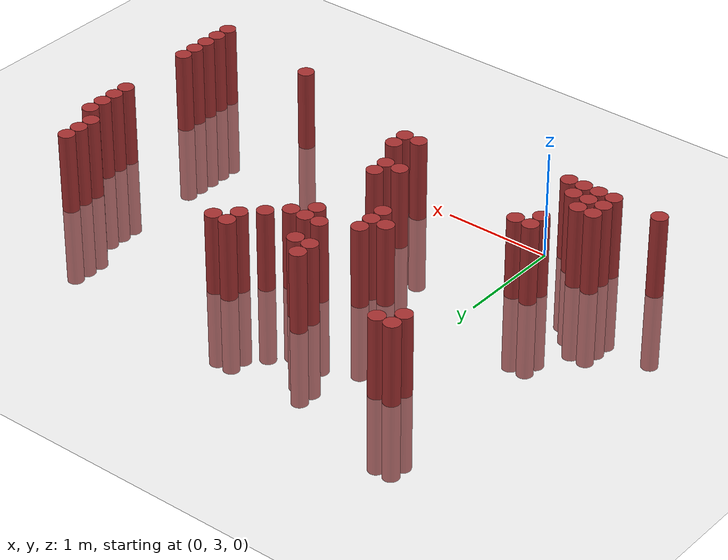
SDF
<sdf version="1.6">
 <world name="default">
  <model name="ground_plane">
   <static>1</static>
   <link name="link">
    <collision name="collision">
     <geometry><plane><normal>0 0 1</normal><size>100 100</size></plane></geometry>
     <surface><friction><ode><mu>100</mu><mu2>50</mu2></ode></friction></surface>
    </collision>
    <visual name="visual">
     <cast_shadows>0</cast_shadows>
     <geometry><plane><normal>0 0 1</normal><size>100 100</size></plane></geometry>
     <material>
      <script><uri>file://media/materials/scripts/gazebo.material</uri><name>Gazebo/Grey</name></script>
     </material>
    </visual>
   </link>
  </model>
  <model name="unit_cylinder_326">
   <static>1</static>
   <pose>-1.025000 2.875000 0.000000 0.000000 0.000000 0.000000</pose>
   <link name="link">
    <inertial>
     <mass>1</mass>
     <inertia><ixx>0.145833</ixx><ixy>0</ixy><ixz>0</ixz><iyy>0.145833</iyy><iyz>0</iyz><izz>0.125</izz></inertia>
    </inertial>
    <collision name="collision">
     <geometry><cylinder><radius>0.075000</radius><length>1.5</length></cylinder></geometry>
    </collision>
    <visual name="visual">
     <geometry><cylinder><radius>0.075000</radius><length>1.5</length></cylinder></geometry>
     <material>
      <ambient>0.648000 0.192000 0.192000 1</ambient>
      <diffuse>0.648000 0.192000 0.192000 1</diffuse>
     </material>
     <material>
      <script><name>Gazebo/Grey</name><uri>file://media/materials/scripts/gazebo.material</uri></script>
     </material>
    </visual>
   </link>
  </model>
  <model name="unit_cylinder_328">
   <static>1</static>
   <pose>-0.575000 2.875000 0.000000 0.000000 0.000000 0.000000</pose>
   <link name="link">
    <inertial>
     <mass>1</mass>
     <inertia><ixx>0.145833</ixx><ixy>0</ixy><ixz>0</ixz><iyy>0.145833</iyy><iyz>0</iyz><izz>0.125</izz></inertia>
    </inertial>
    <collision name="collision">
     <geometry><cylinder><radius>0.075000</radius><length>1.5</length></cylinder></geometry>
    </collision>
    <visual name="visual">
     <geometry><cylinder><radius>0.075000</radius><length>1.5</length></cylinder></geometry>
     <material>
      <ambient>0.648000 0.192000 0.192000 1</ambient>
      <diffuse>0.648000 0.192000 0.192000 1</diffuse>
     </material>
     <material>
      <script><name>Gazebo/Grey</name><uri>file://media/materials/scripts/gazebo.material</uri></script>
     </material>
    </visual>
   </link>
  </model>
  <model name="unit_cylinder_329">
   <static>1</static>
   <pose>-0.575000 3.025000 0.000000 0.000000 0.000000 0.000000</pose>
   <link name="link">
    <inertial>
     <mass>1</mass>
     <inertia><ixx>0.145833</ixx><ixy>0</ixy><ixz>0</ixz><iyy>0.145833</iyy><iyz>0</iyz><izz>0.125</izz></inertia>
    </inertial>
    <collision name="collision">
     <geometry><cylinder><radius>0.075000</radius><length>1.5</length></cylinder></geometry>
    </collision>
    <visual name="visual">
     <geometry><cylinder><radius>0.075000</radius><length>1.5</length></cylinder></geometry>
     <material>
      <ambient>0.648000 0.192000 0.192000 1</ambient>
      <diffuse>0.648000 0.192000 0.192000 1</diffuse>
     </material>
     <material>
      <script><name>Gazebo/Grey</name><uri>file://media/materials/scripts/gazebo.material</uri></script>
     </material>
    </visual>
   </link>
  </model>
  <model name="unit_cylinder_330">
   <static>1</static>
   <pose>-0.575000 3.175000 0.000000 0.000000 0.000000 0.000000</pose>
   <link name="link">
    <inertial>
     <mass>1</mass>
     <inertia><ixx>0.145833</ixx><ixy>0</ixy><ixz>0</ixz><iyy>0.145833</iyy><iyz>0</iyz><izz>0.125</izz></inertia>
    </inertial>
    <collision name="collision">
     <geometry><cylinder><radius>0.075000</radius><length>1.5</length></cylinder></geometry>
    </collision>
    <visual name="visual">
     <geometry><cylinder><radius>0.075000</radius><length>1.5</length></cylinder></geometry>
     <material>
      <ambient>0.648000 0.192000 0.192000 1</ambient>
      <diffuse>0.648000 0.192000 0.192000 1</diffuse>
     </material>
     <material>
      <script><name>Gazebo/Grey</name><uri>file://media/materials/scripts/gazebo.material</uri></script>
     </material>
    </visual>
   </link>
  </model>
  <model name="unit_cylinder_331">
   <static>1</static>
   <pose>-0.425000 2.875000 0.000000 0.000000 0.000000 0.000000</pose>
   <link name="link">
    <inertial>
     <mass>1</mass>
     <inertia><ixx>0.145833</ixx><ixy>0</ixy><ixz>0</ixz><iyy>0.145833</iyy><iyz>0</iyz><izz>0.125</izz></inertia>
    </inertial>
    <collision name="collision">
     <geometry><cylinder><radius>0.075000</radius><length>1.5</length></cylinder></geometry>
    </collision>
    <visual name="visual">
     <geometry><cylinder><radius>0.075000</radius><length>1.5</length></cylinder></geometry>
     <material>
      <ambient>0.648000 0.192000 0.192000 1</ambient>
      <diffuse>0.648000 0.192000 0.192000 1</diffuse>
     </material>
     <material>
      <script><name>Gazebo/Grey</name><uri>file://media/materials/scripts/gazebo.material</uri></script>
     </material>
    </visual>
   </link>
  </model>
  <model name="unit_cylinder_332">
   <static>1</static>
   <pose>-0.425000 3.025000 0.000000 0.000000 0.000000 0.000000</pose>
   <link name="link">
    <inertial>
     <mass>1</mass>
     <inertia><ixx>0.145833</ixx><ixy>0</ixy><ixz>0</ixz><iyy>0.145833</iyy><iyz>0</iyz><izz>0.125</izz></inertia>
    </inertial>
    <collision name="collision">
     <geometry><cylinder><radius>0.075000</radius><length>1.5</length></cylinder></geometry>
    </collision>
    <visual name="visual">
     <geometry><cylinder><radius>0.075000</radius><length>1.5</length></cylinder></geometry>
     <material>
      <ambient>0.648000 0.192000 0.192000 1</ambient>
      <diffuse>0.648000 0.192000 0.192000 1</diffuse>
     </material>
     <material>
      <script><name>Gazebo/Grey</name><uri>file://media/materials/scripts/gazebo.material</uri></script>
     </material>
    </visual>
   </link>
  </model>
  <model name="unit_cylinder_333">
   <static>1</static>
   <pose>-0.425000 3.175000 0.000000 0.000000 0.000000 0.000000</pose>
   <link name="link">
    <inertial>
     <mass>1</mass>
     <inertia><ixx>0.145833</ixx><ixy>0</ixy><ixz>0</ixz><iyy>0.145833</iyy><iyz>0</iyz><izz>0.125</izz></inertia>
    </inertial>
    <collision name="collision">
     <geometry><cylinder><radius>0.075000</radius><length>1.5</length></cylinder></geometry>
    </collision>
    <visual name="visual">
     <geometry><cylinder><radius>0.075000</radius><length>1.5</length></cylinder></geometry>
     <material>
      <ambient>0.648000 0.192000 0.192000 1</ambient>
      <diffuse>0.648000 0.192000 0.192000 1</diffuse>
     </material>
     <material>
      <script><name>Gazebo/Grey</name><uri>file://media/materials/scripts/gazebo.material</uri></script>
     </material>
    </visual>
   </link>
  </model>
  <model name="unit_cylinder_335">
   <static>1</static>
   <pose>-0.275000 2.875000 0.000000 0.000000 0.000000 0.000000</pose>
   <link name="link">
    <inertial>
     <mass>1</mass>
     <inertia><ixx>0.145833</ixx><ixy>0</ixy><ixz>0</ixz><iyy>0.145833</iyy><iyz>0</iyz><izz>0.125</izz></inertia>
    </inertial>
    <collision name="collision">
     <geometry><cylinder><radius>0.075000</radius><length>1.5</length></cylinder></geometry>
    </collision>
    <visual name="visual">
     <geometry><cylinder><radius>0.075000</radius><length>1.5</length></cylinder></geometry>
     <material>
      <ambient>0.648000 0.192000 0.192000 1</ambient>
      <diffuse>0.648000 0.192000 0.192000 1</diffuse>
     </material>
     <material>
      <script><name>Gazebo/Grey</name><uri>file://media/materials/scripts/gazebo.material</uri></script>
     </material>
    </visual>
   </link>
  </model>
  <model name="unit_cylinder_336">
   <static>1</static>
   <pose>-0.275000 3.025000 0.000000 0.000000 0.000000 0.000000</pose>
   <link name="link">
    <inertial>
     <mass>1</mass>
     <inertia><ixx>0.145833</ixx><ixy>0</ixy><ixz>0</ixz><iyy>0.145833</iyy><iyz>0</iyz><izz>0.125</izz></inertia>
    </inertial>
    <collision name="collision">
     <geometry><cylinder><radius>0.075000</radius><length>1.5</length></cylinder></geometry>
    </collision>
    <visual name="visual">
     <geometry><cylinder><radius>0.075000</radius><length>1.5</length></cylinder></geometry>
     <material>
      <ambient>0.648000 0.192000 0.192000 1</ambient>
      <diffuse>0.648000 0.192000 0.192000 1</diffuse>
     </material>
     <material>
      <script><name>Gazebo/Grey</name><uri>file://media/materials/scripts/gazebo.material</uri></script>
     </material>
    </visual>
   </link>
  </model>
  <model name="unit_cylinder_337">
   <static>1</static>
   <pose>-0.275000 3.475000 0.000000 0.000000 0.000000 0.000000</pose>
   <link name="link">
    <inertial>
     <mass>1</mass>
     <inertia><ixx>0.145833</ixx><ixy>0</ixy><ixz>0</ixz><iyy>0.145833</iyy><iyz>0</iyz><izz>0.125</izz></inertia>
    </inertial>
    <collision name="collision">
     <geometry><cylinder><radius>0.075000</radius><length>1.5</length></cylinder></geometry>
    </collision>
    <visual name="visual">
     <geometry><cylinder><radius>0.075000</radius><length>1.5</length></cylinder></geometry>
     <material>
      <ambient>0.648000 0.192000 0.192000 1</ambient>
      <diffuse>0.648000 0.192000 0.192000 1</diffuse>
     </material>
     <material>
      <script><name>Gazebo/Grey</name><uri>file://media/materials/scripts/gazebo.material</uri></script>
     </material>
    </visual>
   </link>
  </model>
  <model name="unit_cylinder_338">
   <static>1</static>
   <pose>-0.275000 3.625000 0.000000 0.000000 0.000000 0.000000</pose>
   <link name="link">
    <inertial>
     <mass>1</mass>
     <inertia><ixx>0.145833</ixx><ixy>0</ixy><ixz>0</ixz><iyy>0.145833</iyy><iyz>0</iyz><izz>0.125</izz></inertia>
    </inertial>
    <collision name="collision">
     <geometry><cylinder><radius>0.075000</radius><length>1.5</length></cylinder></geometry>
    </collision>
    <visual name="visual">
     <geometry><cylinder><radius>0.075000</radius><length>1.5</length></cylinder></geometry>
     <material>
      <ambient>0.648000 0.192000 0.192000 1</ambient>
      <diffuse>0.648000 0.192000 0.192000 1</diffuse>
     </material>
     <material>
      <script><name>Gazebo/Grey</name><uri>file://media/materials/scripts/gazebo.material</uri></script>
     </material>
    </visual>
   </link>
  </model>
  <model name="unit_cylinder_339">
   <static>1</static>
   <pose>-0.275000 5.275000 0.000000 0.000000 0.000000 0.000000</pose>
   <link name="link">
    <inertial>
     <mass>1</mass>
     <inertia><ixx>0.145833</ixx><ixy>0</ixy><ixz>0</ixz><iyy>0.145833</iyy><iyz>0</iyz><izz>0.125</izz></inertia>
    </inertial>
    <collision name="collision">
     <geometry><cylinder><radius>0.075000</radius><length>1.5</length></cylinder></geometry>
    </collision>
    <visual name="visual">
     <geometry><cylinder><radius>0.075000</radius><length>1.5</length></cylinder></geometry>
     <material>
      <ambient>0.648000 0.192000 0.192000 1</ambient>
      <diffuse>0.648000 0.192000 0.192000 1</diffuse>
     </material>
     <material>
      <script><name>Gazebo/Grey</name><uri>file://media/materials/scripts/gazebo.material</uri></script>
     </material>
    </visual>
   </link>
  </model>
  <model name="unit_cylinder_340">
   <static>1</static>
   <pose>-0.275000 5.425000 0.000000 0.000000 0.000000 0.000000</pose>
   <link name="link">
    <inertial>
     <mass>1</mass>
     <inertia><ixx>0.145833</ixx><ixy>0</ixy><ixz>0</ixz><iyy>0.145833</iyy><iyz>0</iyz><izz>0.125</izz></inertia>
    </inertial>
    <collision name="collision">
     <geometry><cylinder><radius>0.075000</radius><length>1.5</length></cylinder></geometry>
    </collision>
    <visual name="visual">
     <geometry><cylinder><radius>0.075000</radius><length>1.5</length></cylinder></geometry>
     <material>
      <ambient>0.648000 0.192000 0.192000 1</ambient>
      <diffuse>0.648000 0.192000 0.192000 1</diffuse>
     </material>
     <material>
      <script><name>Gazebo/Grey</name><uri>file://media/materials/scripts/gazebo.material</uri></script>
     </material>
    </visual>
   </link>
  </model>
  <model name="unit_cylinder_345">
   <static>1</static>
   <pose>-0.125000 2.875000 0.000000 0.000000 0.000000 0.000000</pose>
   <link name="link">
    <inertial>
     <mass>1</mass>
     <inertia><ixx>0.145833</ixx><ixy>0</ixy><ixz>0</ixz><iyy>0.145833</iyy><iyz>0</iyz><izz>0.125</izz></inertia>
    </inertial>
    <collision name="collision">
     <geometry><cylinder><radius>0.075000</radius><length>1.5</length></cylinder></geometry>
    </collision>
    <visual name="visual">
     <geometry><cylinder><radius>0.075000</radius><length>1.5</length></cylinder></geometry>
     <material>
      <ambient>0.648000 0.192000 0.192000 1</ambient>
      <diffuse>0.648000 0.192000 0.192000 1</diffuse>
     </material>
     <material>
      <script><name>Gazebo/Grey</name><uri>file://media/materials/scripts/gazebo.material</uri></script>
     </material>
    </visual>
   </link>
  </model>
  <model name="unit_cylinder_346">
   <static>1</static>
   <pose>-0.125000 3.625000 0.000000 0.000000 0.000000 0.000000</pose>
   <link name="link">
    <inertial>
     <mass>1</mass>
     <inertia><ixx>0.145833</ixx><ixy>0</ixy><ixz>0</ixz><iyy>0.145833</iyy><iyz>0</iyz><izz>0.125</izz></inertia>
    </inertial>
    <collision name="collision">
     <geometry><cylinder><radius>0.075000</radius><length>1.5</length></cylinder></geometry>
    </collision>
    <visual name="visual">
     <geometry><cylinder><radius>0.075000</radius><length>1.5</length></cylinder></geometry>
     <material>
      <ambient>0.648000 0.192000 0.192000 1</ambient>
      <diffuse>0.648000 0.192000 0.192000 1</diffuse>
     </material>
     <material>
      <script><name>Gazebo/Grey</name><uri>file://media/materials/scripts/gazebo.material</uri></script>
     </material>
    </visual>
   </link>
  </model>
  <model name="unit_cylinder_347">
   <static>1</static>
   <pose>-0.125000 5.425000 0.000000 0.000000 0.000000 0.000000</pose>
   <link name="link">
    <inertial>
     <mass>1</mass>
     <inertia><ixx>0.145833</ixx><ixy>0</ixy><ixz>0</ixz><iyy>0.145833</iyy><iyz>0</iyz><izz>0.125</izz></inertia>
    </inertial>
    <collision name="collision">
     <geometry><cylinder><radius>0.075000</radius><length>1.5</length></cylinder></geometry>
    </collision>
    <visual name="visual">
     <geometry><cylinder><radius>0.075000</radius><length>1.5</length></cylinder></geometry>
     <material>
      <ambient>0.648000 0.192000 0.192000 1</ambient>
      <diffuse>0.648000 0.192000 0.192000 1</diffuse>
     </material>
     <material>
      <script><name>Gazebo/Grey</name><uri>file://media/materials/scripts/gazebo.material</uri></script>
     </material>
    </visual>
   </link>
  </model>
  <model name="unit_cylinder_361">
   <static>1</static>
   <pose>0.625000 4.375000 0.000000 0.000000 0.000000 0.000000</pose>
   <link name="link">
    <inertial>
     <mass>1</mass>
     <inertia><ixx>0.145833</ixx><ixy>0</ixy><ixz>0</ixz><iyy>0.145833</iyy><iyz>0</iyz><izz>0.125</izz></inertia>
    </inertial>
    <collision name="collision">
     <geometry><cylinder><radius>0.075000</radius><length>1.5</length></cylinder></geometry>
    </collision>
    <visual name="visual">
     <geometry><cylinder><radius>0.075000</radius><length>1.5</length></cylinder></geometry>
     <material>
      <ambient>0.648000 0.192000 0.192000 1</ambient>
      <diffuse>0.648000 0.192000 0.192000 1</diffuse>
     </material>
     <material>
      <script><name>Gazebo/Grey</name><uri>file://media/materials/scripts/gazebo.material</uri></script>
     </material>
    </visual>
   </link>
  </model>
  <model name="unit_cylinder_362">
   <static>1</static>
   <pose>0.775000 4.225000 0.000000 0.000000 0.000000 0.000000</pose>
   <link name="link">
    <inertial>
     <mass>1</mass>
     <inertia><ixx>0.145833</ixx><ixy>0</ixy><ixz>0</ixz><iyy>0.145833</iyy><iyz>0</iyz><izz>0.125</izz></inertia>
    </inertial>
    <collision name="collision">
     <geometry><cylinder><radius>0.075000</radius><length>1.5</length></cylinder></geometry>
    </collision>
    <visual name="visual">
     <geometry><cylinder><radius>0.075000</radius><length>1.5</length></cylinder></geometry>
     <material>
      <ambient>0.648000 0.192000 0.192000 1</ambient>
      <diffuse>0.648000 0.192000 0.192000 1</diffuse>
     </material>
     <material>
      <script><name>Gazebo/Grey</name><uri>file://media/materials/scripts/gazebo.material</uri></script>
     </material>
    </visual>
   </link>
  </model>
  <model name="unit_cylinder_363">
   <static>1</static>
   <pose>0.775000 4.375000 0.000000 0.000000 0.000000 0.000000</pose>
   <link name="link">
    <inertial>
     <mass>1</mass>
     <inertia><ixx>0.145833</ixx><ixy>0</ixy><ixz>0</ixz><iyy>0.145833</iyy><iyz>0</iyz><izz>0.125</izz></inertia>
    </inertial>
    <collision name="collision">
     <geometry><cylinder><radius>0.075000</radius><length>1.5</length></cylinder></geometry>
    </collision>
    <visual name="visual">
     <geometry><cylinder><radius>0.075000</radius><length>1.5</length></cylinder></geometry>
     <material>
      <ambient>0.648000 0.192000 0.192000 1</ambient>
      <diffuse>0.648000 0.192000 0.192000 1</diffuse>
     </material>
     <material>
      <script><name>Gazebo/Grey</name><uri>file://media/materials/scripts/gazebo.material</uri></script>
     </material>
    </visual>
   </link>
  </model>
  <model name="unit_cylinder_364">
   <static>1</static>
   <pose>0.775000 4.525000 0.000000 0.000000 0.000000 0.000000</pose>
   <link name="link">
    <inertial>
     <mass>1</mass>
     <inertia><ixx>0.145833</ixx><ixy>0</ixy><ixz>0</ixz><iyy>0.145833</iyy><iyz>0</iyz><izz>0.125</izz></inertia>
    </inertial>
    <collision name="collision">
     <geometry><cylinder><radius>0.075000</radius><length>1.5</length></cylinder></geometry>
    </collision>
    <visual name="visual">
     <geometry><cylinder><radius>0.075000</radius><length>1.5</length></cylinder></geometry>
     <material>
      <ambient>0.648000 0.192000 0.192000 1</ambient>
      <diffuse>0.648000 0.192000 0.192000 1</diffuse>
     </material>
     <material>
      <script><name>Gazebo/Grey</name><uri>file://media/materials/scripts/gazebo.material</uri></script>
     </material>
    </visual>
   </link>
  </model>
  <model name="unit_cylinder_365">
   <static>1</static>
   <pose>0.925000 4.975000 0.000000 0.000000 0.000000 0.000000</pose>
   <link name="link">
    <inertial>
     <mass>1</mass>
     <inertia><ixx>0.145833</ixx><ixy>0</ixy><ixz>0</ixz><iyy>0.145833</iyy><iyz>0</iyz><izz>0.125</izz></inertia>
    </inertial>
    <collision name="collision">
     <geometry><cylinder><radius>0.075000</radius><length>1.5</length></cylinder></geometry>
    </collision>
    <visual name="visual">
     <geometry><cylinder><radius>0.075000</radius><length>1.5</length></cylinder></geometry>
     <material>
      <ambient>0.648000 0.192000 0.192000 1</ambient>
      <diffuse>0.648000 0.192000 0.192000 1</diffuse>
     </material>
     <material>
      <script><name>Gazebo/Grey</name><uri>file://media/materials/scripts/gazebo.material</uri></script>
     </material>
    </visual>
   </link>
  </model>
  <model name="unit_cylinder_366">
   <static>1</static>
   <pose>0.925000 5.125000 0.000000 0.000000 0.000000 0.000000</pose>
   <link name="link">
    <inertial>
     <mass>1</mass>
     <inertia><ixx>0.145833</ixx><ixy>0</ixy><ixz>0</ixz><iyy>0.145833</iyy><iyz>0</iyz><izz>0.125</izz></inertia>
    </inertial>
    <collision name="collision">
     <geometry><cylinder><radius>0.075000</radius><length>1.5</length></cylinder></geometry>
    </collision>
    <visual name="visual">
     <geometry><cylinder><radius>0.075000</radius><length>1.5</length></cylinder></geometry>
     <material>
      <ambient>0.648000 0.192000 0.192000 1</ambient>
      <diffuse>0.648000 0.192000 0.192000 1</diffuse>
     </material>
     <material>
      <script><name>Gazebo/Grey</name><uri>file://media/materials/scripts/gazebo.material</uri></script>
     </material>
    </visual>
   </link>
  </model>
  <model name="unit_cylinder_367">
   <static>1</static>
   <pose>1.075000 3.625000 0.000000 0.000000 0.000000 0.000000</pose>
   <link name="link">
    <inertial>
     <mass>1</mass>
     <inertia><ixx>0.145833</ixx><ixy>0</ixy><ixz>0</ixz><iyy>0.145833</iyy><iyz>0</iyz><izz>0.125</izz></inertia>
    </inertial>
    <collision name="collision">
     <geometry><cylinder><radius>0.075000</radius><length>1.5</length></cylinder></geometry>
    </collision>
    <visual name="visual">
     <geometry><cylinder><radius>0.075000</radius><length>1.5</length></cylinder></geometry>
     <material>
      <ambient>0.648000 0.192000 0.192000 1</ambient>
      <diffuse>0.648000 0.192000 0.192000 1</diffuse>
     </material>
     <material>
      <script><name>Gazebo/Grey</name><uri>file://media/materials/scripts/gazebo.material</uri></script>
     </material>
    </visual>
   </link>
  </model>
  <model name="unit_cylinder_368">
   <static>1</static>
   <pose>1.075000 4.675000 0.000000 0.000000 0.000000 0.000000</pose>
   <link name="link">
    <inertial>
     <mass>1</mass>
     <inertia><ixx>0.145833</ixx><ixy>0</ixy><ixz>0</ixz><iyy>0.145833</iyy><iyz>0</iyz><izz>0.125</izz></inertia>
    </inertial>
    <collision name="collision">
     <geometry><cylinder><radius>0.075000</radius><length>1.5</length></cylinder></geometry>
    </collision>
    <visual name="visual">
     <geometry><cylinder><radius>0.075000</radius><length>1.5</length></cylinder></geometry>
     <material>
      <ambient>0.648000 0.192000 0.192000 1</ambient>
      <diffuse>0.648000 0.192000 0.192000 1</diffuse>
     </material>
     <material>
      <script><name>Gazebo/Grey</name><uri>file://media/materials/scripts/gazebo.material</uri></script>
     </material>
    </visual>
   </link>
  </model>
  <model name="unit_cylinder_369">
   <static>1</static>
   <pose>1.075000 4.975000 0.000000 0.000000 0.000000 0.000000</pose>
   <link name="link">
    <inertial>
     <mass>1</mass>
     <inertia><ixx>0.145833</ixx><ixy>0</ixy><ixz>0</ixz><iyy>0.145833</iyy><iyz>0</iyz><izz>0.125</izz></inertia>
    </inertial>
    <collision name="collision">
     <geometry><cylinder><radius>0.075000</radius><length>1.5</length></cylinder></geometry>
    </collision>
    <visual name="visual">
     <geometry><cylinder><radius>0.075000</radius><length>1.5</length></cylinder></geometry>
     <material>
      <ambient>0.648000 0.192000 0.192000 1</ambient>
      <diffuse>0.648000 0.192000 0.192000 1</diffuse>
     </material>
     <material>
      <script><name>Gazebo/Grey</name><uri>file://media/materials/scripts/gazebo.material</uri></script>
     </material>
    </visual>
   </link>
  </model>
  <model name="unit_cylinder_373">
   <static>1</static>
   <pose>1.225000 3.175000 0.000000 0.000000 0.000000 0.000000</pose>
   <link name="link">
    <inertial>
     <mass>1</mass>
     <inertia><ixx>0.145833</ixx><ixy>0</ixy><ixz>0</ixz><iyy>0.145833</iyy><iyz>0</iyz><izz>0.125</izz></inertia>
    </inertial>
    <collision name="collision">
     <geometry><cylinder><radius>0.075000</radius><length>1.5</length></cylinder></geometry>
    </collision>
    <visual name="visual">
     <geometry><cylinder><radius>0.075000</radius><length>1.5</length></cylinder></geometry>
     <material>
      <ambient>0.648000 0.192000 0.192000 1</ambient>
      <diffuse>0.648000 0.192000 0.192000 1</diffuse>
     </material>
     <material>
      <script><name>Gazebo/Grey</name><uri>file://media/materials/scripts/gazebo.material</uri></script>
     </material>
    </visual>
   </link>
  </model>
  <model name="unit_cylinder_374">
   <static>1</static>
   <pose>1.225000 3.625000 0.000000 0.000000 0.000000 0.000000</pose>
   <link name="link">
    <inertial>
     <mass>1</mass>
     <inertia><ixx>0.145833</ixx><ixy>0</ixy><ixz>0</ixz><iyy>0.145833</iyy><iyz>0</iyz><izz>0.125</izz></inertia>
    </inertial>
    <collision name="collision">
     <geometry><cylinder><radius>0.075000</radius><length>1.5</length></cylinder></geometry>
    </collision>
    <visual name="visual">
     <geometry><cylinder><radius>0.075000</radius><length>1.5</length></cylinder></geometry>
     <material>
      <ambient>0.648000 0.192000 0.192000 1</ambient>
      <diffuse>0.648000 0.192000 0.192000 1</diffuse>
     </material>
     <material>
      <script><name>Gazebo/Grey</name><uri>file://media/materials/scripts/gazebo.material</uri></script>
     </material>
    </visual>
   </link>
  </model>
  <model name="unit_cylinder_375">
   <static>1</static>
   <pose>1.225000 3.775000 0.000000 0.000000 0.000000 0.000000</pose>
   <link name="link">
    <inertial>
     <mass>1</mass>
     <inertia><ixx>0.145833</ixx><ixy>0</ixy><ixz>0</ixz><iyy>0.145833</iyy><iyz>0</iyz><izz>0.125</izz></inertia>
    </inertial>
    <collision name="collision">
     <geometry><cylinder><radius>0.075000</radius><length>1.5</length></cylinder></geometry>
    </collision>
    <visual name="visual">
     <geometry><cylinder><radius>0.075000</radius><length>1.5</length></cylinder></geometry>
     <material>
      <ambient>0.648000 0.192000 0.192000 1</ambient>
      <diffuse>0.648000 0.192000 0.192000 1</diffuse>
     </material>
     <material>
      <script><name>Gazebo/Grey</name><uri>file://media/materials/scripts/gazebo.material</uri></script>
     </material>
    </visual>
   </link>
  </model>
  <model name="unit_cylinder_376">
   <static>1</static>
   <pose>1.225000 4.525000 0.000000 0.000000 0.000000 0.000000</pose>
   <link name="link">
    <inertial>
     <mass>1</mass>
     <inertia><ixx>0.145833</ixx><ixy>0</ixy><ixz>0</ixz><iyy>0.145833</iyy><iyz>0</iyz><izz>0.125</izz></inertia>
    </inertial>
    <collision name="collision">
     <geometry><cylinder><radius>0.075000</radius><length>1.5</length></cylinder></geometry>
    </collision>
    <visual name="visual">
     <geometry><cylinder><radius>0.075000</radius><length>1.5</length></cylinder></geometry>
     <material>
      <ambient>0.648000 0.192000 0.192000 1</ambient>
      <diffuse>0.648000 0.192000 0.192000 1</diffuse>
     </material>
     <material>
      <script><name>Gazebo/Grey</name><uri>file://media/materials/scripts/gazebo.material</uri></script>
     </material>
    </visual>
   </link>
  </model>
  <model name="unit_cylinder_377">
   <static>1</static>
   <pose>1.225000 4.675000 0.000000 0.000000 0.000000 0.000000</pose>
   <link name="link">
    <inertial>
     <mass>1</mass>
     <inertia><ixx>0.145833</ixx><ixy>0</ixy><ixz>0</ixz><iyy>0.145833</iyy><iyz>0</iyz><izz>0.125</izz></inertia>
    </inertial>
    <collision name="collision">
     <geometry><cylinder><radius>0.075000</radius><length>1.5</length></cylinder></geometry>
    </collision>
    <visual name="visual">
     <geometry><cylinder><radius>0.075000</radius><length>1.5</length></cylinder></geometry>
     <material>
      <ambient>0.648000 0.192000 0.192000 1</ambient>
      <diffuse>0.648000 0.192000 0.192000 1</diffuse>
     </material>
     <material>
      <script><name>Gazebo/Grey</name><uri>file://media/materials/scripts/gazebo.material</uri></script>
     </material>
    </visual>
   </link>
  </model>
  <model name="unit_cylinder_381">
   <static>1</static>
   <pose>1.375000 3.175000 0.000000 0.000000 0.000000 0.000000</pose>
   <link name="link">
    <inertial>
     <mass>1</mass>
     <inertia><ixx>0.145833</ixx><ixy>0</ixy><ixz>0</ixz><iyy>0.145833</iyy><iyz>0</iyz><izz>0.125</izz></inertia>
    </inertial>
    <collision name="collision">
     <geometry><cylinder><radius>0.075000</radius><length>1.5</length></cylinder></geometry>
    </collision>
    <visual name="visual">
     <geometry><cylinder><radius>0.075000</radius><length>1.5</length></cylinder></geometry>
     <material>
      <ambient>0.648000 0.192000 0.192000 1</ambient>
      <diffuse>0.648000 0.192000 0.192000 1</diffuse>
     </material>
     <material>
      <script><name>Gazebo/Grey</name><uri>file://media/materials/scripts/gazebo.material</uri></script>
     </material>
    </visual>
   </link>
  </model>
  <model name="unit_cylinder_382">
   <static>1</static>
   <pose>1.375000 3.325000 0.000000 0.000000 0.000000 0.000000</pose>
   <link name="link">
    <inertial>
     <mass>1</mass>
     <inertia><ixx>0.145833</ixx><ixy>0</ixy><ixz>0</ixz><iyy>0.145833</iyy><iyz>0</iyz><izz>0.125</izz></inertia>
    </inertial>
    <collision name="collision">
     <geometry><cylinder><radius>0.075000</radius><length>1.5</length></cylinder></geometry>
    </collision>
    <visual name="visual">
     <geometry><cylinder><radius>0.075000</radius><length>1.5</length></cylinder></geometry>
     <material>
      <ambient>0.648000 0.192000 0.192000 1</ambient>
      <diffuse>0.648000 0.192000 0.192000 1</diffuse>
     </material>
     <material>
      <script><name>Gazebo/Grey</name><uri>file://media/materials/scripts/gazebo.material</uri></script>
     </material>
    </visual>
   </link>
  </model>
  <model name="unit_cylinder_383">
   <static>1</static>
   <pose>1.375000 4.675000 0.000000 0.000000 0.000000 0.000000</pose>
   <link name="link">
    <inertial>
     <mass>1</mass>
     <inertia><ixx>0.145833</ixx><ixy>0</ixy><ixz>0</ixz><iyy>0.145833</iyy><iyz>0</iyz><izz>0.125</izz></inertia>
    </inertial>
    <collision name="collision">
     <geometry><cylinder><radius>0.075000</radius><length>1.5</length></cylinder></geometry>
    </collision>
    <visual name="visual">
     <geometry><cylinder><radius>0.075000</radius><length>1.5</length></cylinder></geometry>
     <material>
      <ambient>0.648000 0.192000 0.192000 1</ambient>
      <diffuse>0.648000 0.192000 0.192000 1</diffuse>
     </material>
     <material>
      <script><name>Gazebo/Grey</name><uri>file://media/materials/scripts/gazebo.material</uri></script>
     </material>
    </visual>
   </link>
  </model>
  <model name="unit_cylinder_386">
   <static>1</static>
   <pose>1.525000 4.825000 0.000000 0.000000 0.000000 0.000000</pose>
   <link name="link">
    <inertial>
     <mass>1</mass>
     <inertia><ixx>0.145833</ixx><ixy>0</ixy><ixz>0</ixz><iyy>0.145833</iyy><iyz>0</iyz><izz>0.125</izz></inertia>
    </inertial>
    <collision name="collision">
     <geometry><cylinder><radius>0.075000</radius><length>1.5</length></cylinder></geometry>
    </collision>
    <visual name="visual">
     <geometry><cylinder><radius>0.075000</radius><length>1.5</length></cylinder></geometry>
     <material>
      <ambient>0.648000 0.192000 0.192000 1</ambient>
      <diffuse>0.648000 0.192000 0.192000 1</diffuse>
     </material>
     <material>
      <script><name>Gazebo/Grey</name><uri>file://media/materials/scripts/gazebo.material</uri></script>
     </material>
    </visual>
   </link>
  </model>
  <model name="unit_cylinder_389">
   <static>1</static>
   <pose>1.675000 4.975000 0.000000 0.000000 0.000000 0.000000</pose>
   <link name="link">
    <inertial>
     <mass>1</mass>
     <inertia><ixx>0.145833</ixx><ixy>0</ixy><ixz>0</ixz><iyy>0.145833</iyy><iyz>0</iyz><izz>0.125</izz></inertia>
    </inertial>
    <collision name="collision">
     <geometry><cylinder><radius>0.075000</radius><length>1.5</length></cylinder></geometry>
    </collision>
    <visual name="visual">
     <geometry><cylinder><radius>0.075000</radius><length>1.5</length></cylinder></geometry>
     <material>
      <ambient>0.648000 0.192000 0.192000 1</ambient>
      <diffuse>0.648000 0.192000 0.192000 1</diffuse>
     </material>
     <material>
      <script><name>Gazebo/Grey</name><uri>file://media/materials/scripts/gazebo.material</uri></script>
     </material>
    </visual>
   </link>
  </model>
  <model name="unit_cylinder_390">
   <static>1</static>
   <pose>1.675000 5.125000 0.000000 0.000000 0.000000 0.000000</pose>
   <link name="link">
    <inertial>
     <mass>1</mass>
     <inertia><ixx>0.145833</ixx><ixy>0</ixy><ixz>0</ixz><iyy>0.145833</iyy><iyz>0</iyz><izz>0.125</izz></inertia>
    </inertial>
    <collision name="collision">
     <geometry><cylinder><radius>0.075000</radius><length>1.5</length></cylinder></geometry>
    </collision>
    <visual name="visual">
     <geometry><cylinder><radius>0.075000</radius><length>1.5</length></cylinder></geometry>
     <material>
      <ambient>0.648000 0.192000 0.192000 1</ambient>
      <diffuse>0.648000 0.192000 0.192000 1</diffuse>
     </material>
     <material>
      <script><name>Gazebo/Grey</name><uri>file://media/materials/scripts/gazebo.material</uri></script>
     </material>
    </visual>
   </link>
  </model>
  <model name="unit_cylinder_391">
   <static>1</static>
   <pose>1.825000 5.125000 0.000000 0.000000 0.000000 0.000000</pose>
   <link name="link">
    <inertial>
     <mass>1</mass>
     <inertia><ixx>0.145833</ixx><ixy>0</ixy><ixz>0</ixz><iyy>0.145833</iyy><iyz>0</iyz><izz>0.125</izz></inertia>
    </inertial>
    <collision name="collision">
     <geometry><cylinder><radius>0.075000</radius><length>1.5</length></cylinder></geometry>
    </collision>
    <visual name="visual">
     <geometry><cylinder><radius>0.075000</radius><length>1.5</length></cylinder></geometry>
     <material>
      <ambient>0.648000 0.192000 0.192000 1</ambient>
      <diffuse>0.648000 0.192000 0.192000 1</diffuse>
     </material>
     <material>
      <script><name>Gazebo/Grey</name><uri>file://media/materials/scripts/gazebo.material</uri></script>
     </material>
    </visual>
   </link>
  </model>
  <model name="unit_cylinder_405">
   <static>1</static>
   <pose>2.725000 2.875000 0.000000 0.000000 0.000000 0.000000</pose>
   <link name="link">
    <inertial>
     <mass>1</mass>
     <inertia><ixx>0.145833</ixx><ixy>0</ixy><ixz>0</ixz><iyy>0.145833</iyy><iyz>0</iyz><izz>0.125</izz></inertia>
    </inertial>
    <collision name="collision">
     <geometry><cylinder><radius>0.075000</radius><length>1.5</length></cylinder></geometry>
    </collision>
    <visual name="visual">
     <geometry><cylinder><radius>0.075000</radius><length>1.5</length></cylinder></geometry>
     <material>
      <ambient>0.648000 0.192000 0.192000 1</ambient>
      <diffuse>0.648000 0.192000 0.192000 1</diffuse>
     </material>
     <material>
      <script><name>Gazebo/Grey</name><uri>file://media/materials/scripts/gazebo.material</uri></script>
     </material>
    </visual>
   </link>
  </model>
  <model name="unit_cylinder_423">
   <static>1</static>
   <pose>3.625000 4.675000 0.000000 0.000000 0.000000 0.000000</pose>
   <link name="link">
    <inertial>
     <mass>1</mass>
     <inertia><ixx>0.145833</ixx><ixy>0</ixy><ixz>0</ixz><iyy>0.145833</iyy><iyz>0</iyz><izz>0.125</izz></inertia>
    </inertial>
    <collision name="collision">
     <geometry><cylinder><radius>0.075000</radius><length>1.5</length></cylinder></geometry>
    </collision>
    <visual name="visual">
     <geometry><cylinder><radius>0.075000</radius><length>1.5</length></cylinder></geometry>
     <material>
      <ambient>0.648000 0.192000 0.192000 1</ambient>
      <diffuse>0.648000 0.192000 0.192000 1</diffuse>
     </material>
     <material>
      <script><name>Gazebo/Grey</name><uri>file://media/materials/scripts/gazebo.material</uri></script>
     </material>
    </visual>
   </link>
  </model>
  <model name="unit_cylinder_424">
   <static>1</static>
   <pose>3.625000 4.825000 0.000000 0.000000 0.000000 0.000000</pose>
   <link name="link">
    <inertial>
     <mass>1</mass>
     <inertia><ixx>0.145833</ixx><ixy>0</ixy><ixz>0</ixz><iyy>0.145833</iyy><iyz>0</iyz><izz>0.125</izz></inertia>
    </inertial>
    <collision name="collision">
     <geometry><cylinder><radius>0.075000</radius><length>1.5</length></cylinder></geometry>
    </collision>
    <visual name="visual">
     <geometry><cylinder><radius>0.075000</radius><length>1.5</length></cylinder></geometry>
     <material>
      <ambient>0.648000 0.192000 0.192000 1</ambient>
      <diffuse>0.648000 0.192000 0.192000 1</diffuse>
     </material>
     <material>
      <script><name>Gazebo/Grey</name><uri>file://media/materials/scripts/gazebo.material</uri></script>
     </material>
    </visual>
   </link>
  </model>
  <model name="unit_cylinder_425">
   <static>1</static>
   <pose>3.625000 4.975000 0.000000 0.000000 0.000000 0.000000</pose>
   <link name="link">
    <inertial>
     <mass>1</mass>
     <inertia><ixx>0.145833</ixx><ixy>0</ixy><ixz>0</ixz><iyy>0.145833</iyy><iyz>0</iyz><izz>0.125</izz></inertia>
    </inertial>
    <collision name="collision">
     <geometry><cylinder><radius>0.075000</radius><length>1.5</length></cylinder></geometry>
    </collision>
    <visual name="visual">
     <geometry><cylinder><radius>0.075000</radius><length>1.5</length></cylinder></geometry>
     <material>
      <ambient>0.648000 0.192000 0.192000 1</ambient>
      <diffuse>0.648000 0.192000 0.192000 1</diffuse>
     </material>
     <material>
      <script><name>Gazebo/Grey</name><uri>file://media/materials/scripts/gazebo.material</uri></script>
     </material>
    </visual>
   </link>
  </model>
  <model name="unit_cylinder_442">
   <static>1</static>
   <pose>3.775000 2.725000 0.000000 0.000000 0.000000 0.000000</pose>
   <link name="link">
    <inertial>
     <mass>1</mass>
     <inertia><ixx>0.145833</ixx><ixy>0</ixy><ixz>0</ixz><iyy>0.145833</iyy><iyz>0</iyz><izz>0.125</izz></inertia>
    </inertial>
    <collision name="collision">
     <geometry><cylinder><radius>0.075000</radius><length>1.5</length></cylinder></geometry>
    </collision>
    <visual name="visual">
     <geometry><cylinder><radius>0.075000</radius><length>1.5</length></cylinder></geometry>
     <material>
      <ambient>0.648000 0.192000 0.192000 1</ambient>
      <diffuse>0.648000 0.192000 0.192000 1</diffuse>
     </material>
     <material>
      <script><name>Gazebo/Grey</name><uri>file://media/materials/scripts/gazebo.material</uri></script>
     </material>
    </visual>
   </link>
  </model>
  <model name="unit_cylinder_443">
   <static>1</static>
   <pose>3.775000 2.875000 0.000000 0.000000 0.000000 0.000000</pose>
   <link name="link">
    <inertial>
     <mass>1</mass>
     <inertia><ixx>0.145833</ixx><ixy>0</ixy><ixz>0</ixz><iyy>0.145833</iyy><iyz>0</iyz><izz>0.125</izz></inertia>
    </inertial>
    <collision name="collision">
     <geometry><cylinder><radius>0.075000</radius><length>1.5</length></cylinder></geometry>
    </collision>
    <visual name="visual">
     <geometry><cylinder><radius>0.075000</radius><length>1.5</length></cylinder></geometry>
     <material>
      <ambient>0.648000 0.192000 0.192000 1</ambient>
      <diffuse>0.648000 0.192000 0.192000 1</diffuse>
     </material>
     <material>
      <script><name>Gazebo/Grey</name><uri>file://media/materials/scripts/gazebo.material</uri></script>
     </material>
    </visual>
   </link>
  </model>
  <model name="unit_cylinder_444">
   <static>1</static>
   <pose>3.775000 3.025000 0.000000 0.000000 0.000000 0.000000</pose>
   <link name="link">
    <inertial>
     <mass>1</mass>
     <inertia><ixx>0.145833</ixx><ixy>0</ixy><ixz>0</ixz><iyy>0.145833</iyy><iyz>0</iyz><izz>0.125</izz></inertia>
    </inertial>
    <collision name="collision">
     <geometry><cylinder><radius>0.075000</radius><length>1.5</length></cylinder></geometry>
    </collision>
    <visual name="visual">
     <geometry><cylinder><radius>0.075000</radius><length>1.5</length></cylinder></geometry>
     <material>
      <ambient>0.648000 0.192000 0.192000 1</ambient>
      <diffuse>0.648000 0.192000 0.192000 1</diffuse>
     </material>
     <material>
      <script><name>Gazebo/Grey</name><uri>file://media/materials/scripts/gazebo.material</uri></script>
     </material>
    </visual>
   </link>
  </model>
  <model name="unit_cylinder_445">
   <static>1</static>
   <pose>3.775000 3.175000 0.000000 0.000000 0.000000 0.000000</pose>
   <link name="link">
    <inertial>
     <mass>1</mass>
     <inertia><ixx>0.145833</ixx><ixy>0</ixy><ixz>0</ixz><iyy>0.145833</iyy><iyz>0</iyz><izz>0.125</izz></inertia>
    </inertial>
    <collision name="collision">
     <geometry><cylinder><radius>0.075000</radius><length>1.5</length></cylinder></geometry>
    </collision>
    <visual name="visual">
     <geometry><cylinder><radius>0.075000</radius><length>1.5</length></cylinder></geometry>
     <material>
      <ambient>0.648000 0.192000 0.192000 1</ambient>
      <diffuse>0.648000 0.192000 0.192000 1</diffuse>
     </material>
     <material>
      <script><name>Gazebo/Grey</name><uri>file://media/materials/scripts/gazebo.material</uri></script>
     </material>
    </visual>
   </link>
  </model>
  <model name="unit_cylinder_446">
   <static>1</static>
   <pose>3.775000 3.325000 0.000000 0.000000 0.000000 0.000000</pose>
   <link name="link">
    <inertial>
     <mass>1</mass>
     <inertia><ixx>0.145833</ixx><ixy>0</ixy><ixz>0</ixz><iyy>0.145833</iyy><iyz>0</iyz><izz>0.125</izz></inertia>
    </inertial>
    <collision name="collision">
     <geometry><cylinder><radius>0.075000</radius><length>1.5</length></cylinder></geometry>
    </collision>
    <visual name="visual">
     <geometry><cylinder><radius>0.075000</radius><length>1.5</length></cylinder></geometry>
     <material>
      <ambient>0.648000 0.192000 0.192000 1</ambient>
      <diffuse>0.648000 0.192000 0.192000 1</diffuse>
     </material>
     <material>
      <script><name>Gazebo/Grey</name><uri>file://media/materials/scripts/gazebo.material</uri></script>
     </material>
    </visual>
   </link>
  </model>
  <model name="unit_cylinder_447">
   <static>1</static>
   <pose>3.775000 4.075000 0.000000 0.000000 0.000000 0.000000</pose>
   <link name="link">
    <inertial>
     <mass>1</mass>
     <inertia><ixx>0.145833</ixx><ixy>0</ixy><ixz>0</ixz><iyy>0.145833</iyy><iyz>0</iyz><izz>0.125</izz></inertia>
    </inertial>
    <collision name="collision">
     <geometry><cylinder><radius>0.075000</radius><length>1.5</length></cylinder></geometry>
    </collision>
    <visual name="visual">
     <geometry><cylinder><radius>0.075000</radius><length>1.5</length></cylinder></geometry>
     <material>
      <ambient>0.648000 0.192000 0.192000 1</ambient>
      <diffuse>0.648000 0.192000 0.192000 1</diffuse>
     </material>
     <material>
      <script><name>Gazebo/Grey</name><uri>file://media/materials/scripts/gazebo.material</uri></script>
     </material>
    </visual>
   </link>
  </model>
  <model name="unit_cylinder_448">
   <static>1</static>
   <pose>3.775000 4.225000 0.000000 0.000000 0.000000 0.000000</pose>
   <link name="link">
    <inertial>
     <mass>1</mass>
     <inertia><ixx>0.145833</ixx><ixy>0</ixy><ixz>0</ixz><iyy>0.145833</iyy><iyz>0</iyz><izz>0.125</izz></inertia>
    </inertial>
    <collision name="collision">
     <geometry><cylinder><radius>0.075000</radius><length>1.5</length></cylinder></geometry>
    </collision>
    <visual name="visual">
     <geometry><cylinder><radius>0.075000</radius><length>1.5</length></cylinder></geometry>
     <material>
      <ambient>0.648000 0.192000 0.192000 1</ambient>
      <diffuse>0.648000 0.192000 0.192000 1</diffuse>
     </material>
     <material>
      <script><name>Gazebo/Grey</name><uri>file://media/materials/scripts/gazebo.material</uri></script>
     </material>
    </visual>
   </link>
  </model>
  <model name="unit_cylinder_449">
   <static>1</static>
   <pose>3.775000 4.375000 0.000000 0.000000 0.000000 0.000000</pose>
   <link name="link">
    <inertial>
     <mass>1</mass>
     <inertia><ixx>0.145833</ixx><ixy>0</ixy><ixz>0</ixz><iyy>0.145833</iyy><iyz>0</iyz><izz>0.125</izz></inertia>
    </inertial>
    <collision name="collision">
     <geometry><cylinder><radius>0.075000</radius><length>1.5</length></cylinder></geometry>
    </collision>
    <visual name="visual">
     <geometry><cylinder><radius>0.075000</radius><length>1.5</length></cylinder></geometry>
     <material>
      <ambient>0.648000 0.192000 0.192000 1</ambient>
      <diffuse>0.648000 0.192000 0.192000 1</diffuse>
     </material>
     <material>
      <script><name>Gazebo/Grey</name><uri>file://media/materials/scripts/gazebo.material</uri></script>
     </material>
    </visual>
   </link>
  </model>
  <model name="unit_cylinder_450">
   <static>1</static>
   <pose>3.775000 4.525000 0.000000 0.000000 0.000000 0.000000</pose>
   <link name="link">
    <inertial>
     <mass>1</mass>
     <inertia><ixx>0.145833</ixx><ixy>0</ixy><ixz>0</ixz><iyy>0.145833</iyy><iyz>0</iyz><izz>0.125</izz></inertia>
    </inertial>
    <collision name="collision">
     <geometry><cylinder><radius>0.075000</radius><length>1.5</length></cylinder></geometry>
    </collision>
    <visual name="visual">
     <geometry><cylinder><radius>0.075000</radius><length>1.5</length></cylinder></geometry>
     <material>
      <ambient>0.648000 0.192000 0.192000 1</ambient>
      <diffuse>0.648000 0.192000 0.192000 1</diffuse>
     </material>
     <material>
      <script><name>Gazebo/Grey</name><uri>file://media/materials/scripts/gazebo.material</uri></script>
     </material>
    </visual>
   </link>
  </model>
 </world>
</sdf>
